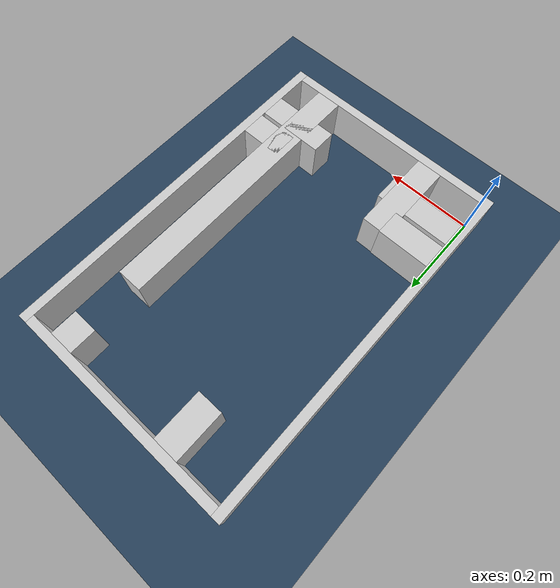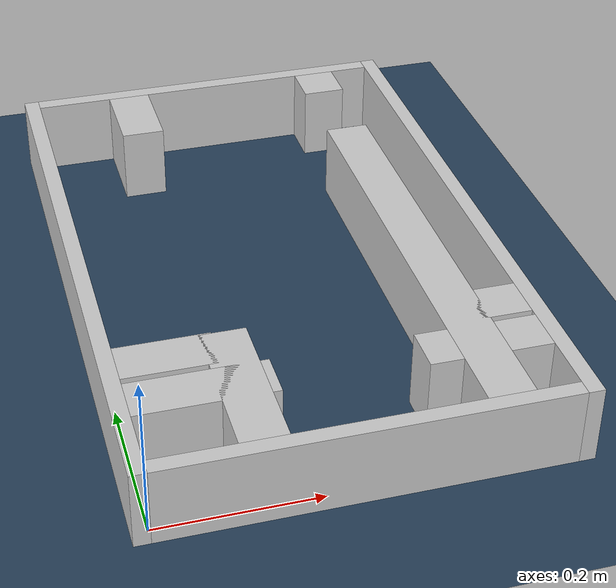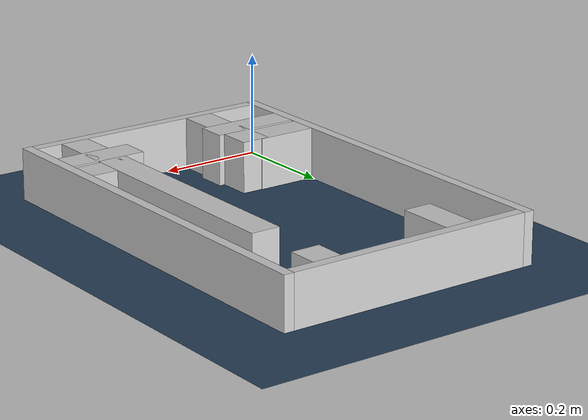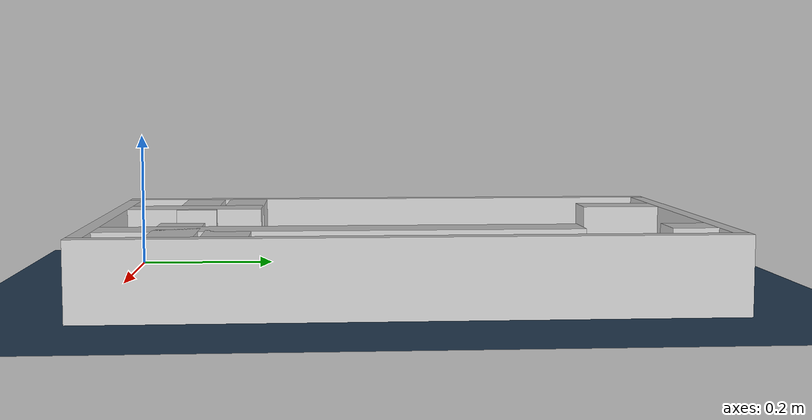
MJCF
<?xml version="1.0" ?>
<mujoco model="generated_real_template">
  <compiler angle="degree"/>
  <option timestep="0.002" integrator="implicitfast" iterations="100" cone="elliptic"/>
  <default>
    <geom density="1"/>
  </default>
  <asset>
    <texture builtin="gradient" height="3072" rgb1="0.3 0.5 0.7" rgb2="0 0 0" type="skybox" width="512"/>
    <texture builtin="checker" height="300" mark="edge" markrgb="0.8 0.8 0.8" name="groundplane" rgb1="0.2 0.3 0.4" rgb2="0.1 0.2 0.3" type="2d" width="300"/>
    <material name="groundplane" reflectance="0.2" texrepeat="5 5" texture="groundplane" texuniform="true"/>
  </asset>
  <worldbody>
    <light dir="0 0 -1" directional="true" pos="0 0 1.5"/>
    <geom name="floor" type="plane" condim="4" friction="0.5 0.005 0.001" material="groundplane" size="0 0 0.05"/>
    <body name="walls">
      <geom name="wall_boundary_left" type="box" condim="4" friction="1.0 0.005 0.0001" rgba="0.8 0.8 0.8 1" pos="-0.010000 0.387500 0.050000" euler="0 0 0.000000" size="0.010000 0.407500 0.050000"/>
      <geom name="wall_boundary_right" type="box" condim="4" friction="1.0 0.005 0.0001" rgba="0.8 0.8 0.8 1" pos="0.500000 0.387500 0.050000" euler="0 0 0.000000" size="0.010000 0.407500 0.050000"/>
      <geom name="wall_boundary_bottom" type="box" condim="4" friction="1.0 0.005 0.0001" rgba="0.8 0.8 0.8 1" pos="0.245000 -0.010000 0.050000" euler="0 0 0.000000" size="0.245000 0.010000 0.050000"/>
      <geom name="wall_boundary_top" type="box" condim="4" friction="1.0 0.005 0.0001" rgba="0.8 0.8 0.8 1" pos="0.245000 0.785000 0.050000" euler="0 0 0.000000" size="0.245000 0.010000 0.050000"/>
      <geom name="wall_inner_1_1" type="box" condim="4" friction="1.0 0.005 0.0001" rgba="0.8 0.8 0.8 1" pos="0.409084 0.303553 0.050000" euler="0 0 90.000000" size="0.303553 0.028500 0.050000"/>
      <geom name="wall_inner_1_2" type="box" condim="4" friction="1.0 0.005 0.0001" rgba="0.8 0.8 0.8 1" pos="0.409084 0.745649 0.050000" euler="0 0 90.000000" size="0.029351 0.028500 0.050000"/>
      <geom name="wall_inner_2_1" type="box" condim="4" friction="1.0 0.005 0.0001" rgba="0.8 0.8 0.8 1" pos="0.058171 0.164904 0.050000" euler="0 0 0.000000" size="0.058171 0.028500 0.050000"/>
      <geom name="wall_inner_2_2" type="box" condim="4" friction="1.0 0.005 0.0001" rgba="0.8 0.8 0.8 1" pos="0.443575 0.164904 0.050000" euler="0 0 0.000000" size="0.046425 0.028500 0.050000"/>
      <geom name="wall_inner_3_1" type="box" condim="4" friction="1.0 0.005 0.0001" rgba="0.8 0.8 0.8 1" pos="0.084383 0.099848 0.050000" euler="0 0 0.000000" size="0.084383 0.028500 0.050000"/>
      <geom name="wall_inner_3_2" type="box" condim="4" friction="1.0 0.005 0.0001" rgba="0.8 0.8 0.8 1" pos="0.414973 0.099848 0.050000" euler="0 0 0.000000" size="0.075027 0.028500 0.050000"/>
      <geom name="wall_inner_4_1" type="box" condim="4" friction="1.0 0.005 0.0001" rgba="0.8 0.8 0.8 1" pos="0.129318 0.095845 0.050000" euler="0 0 90.000000" size="0.095845 0.028500 0.050000"/>
      <geom name="wall_inner_4_2" type="box" condim="4" friction="1.0 0.005 0.0001" rgba="0.8 0.8 0.8 1" pos="0.129318 0.719802 0.050000" euler="0 0 90.000000" size="0.055198 0.028500 0.050000"/>
    </body>
  </worldbody>
</mujoco>
